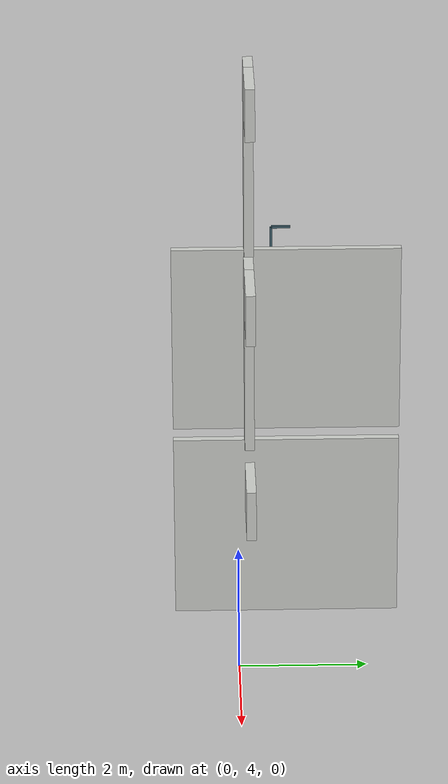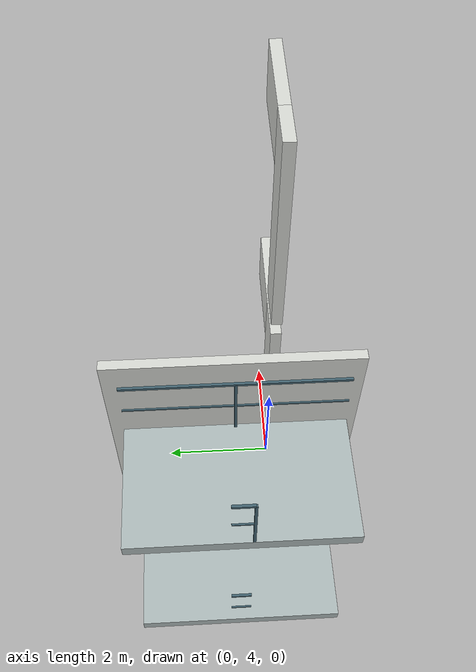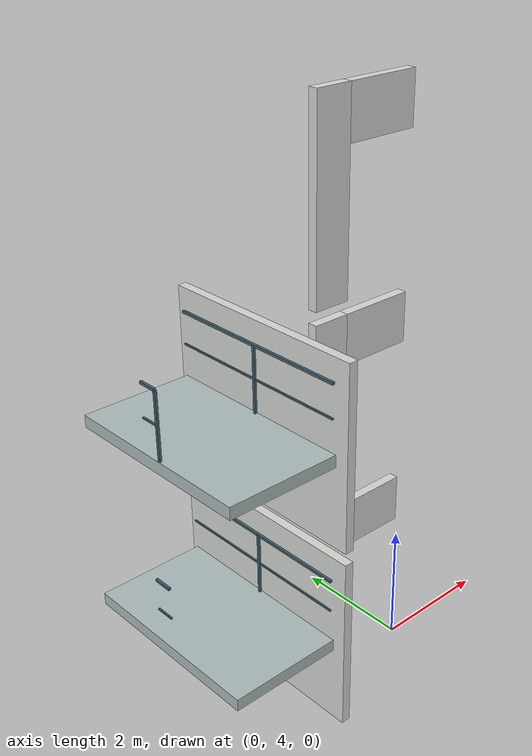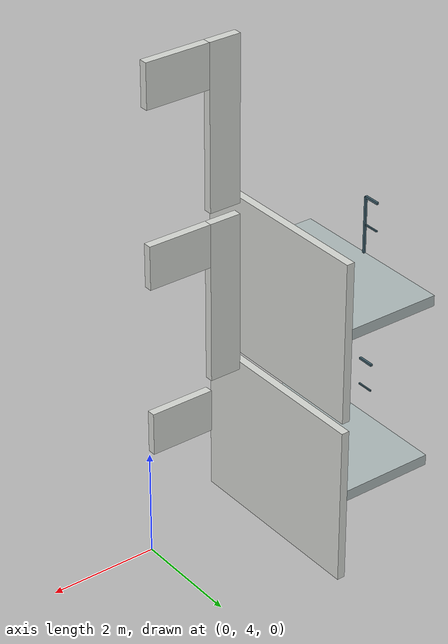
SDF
<sdf version="1.6">
 <world name="three_floor">
  <model name="f1_wall_029">
   <static>true</static>
   <pose>-2.1 4.8 1.5 0 0 0</pose>
   <link name="f1_wall_029_link">
    <collision name="f1_wall_029_collision"><geometry><box><size>0.15 3.6 3</size></box></geometry></collision>
    <visual name="f1_wall_029_visual">
     <geometry><box><size>0.15 3.6 3</size></box></geometry>
     <material><ambient>.84 .85 .83 1</ambient><diffuse>.84 .85 .83 1</diffuse></material>
    </visual>
   </link>
  </model>
  <model name="f1_lintel_lift">
   <static>true</static>
   <pose>-0.5 4.2 2.6 0 0 0</pose>
   <link name="f1_lintel_lift_link">
    <collision name="f1_lintel_lift_collision">
     <geometry><box><size>1.2 0.15 0.8</size></box></geometry>
    </collision>
    <visual name="f1_lintel_lift_visual">
     <geometry><box><size>1.2 0.15 0.8</size></box></geometry>
     <material><ambient>.84 .85 .83 1</ambient><diffuse>.84 .85 .83 1</diffuse></material>
    </visual>
   </link>
  </model>
  <model name="f2_wall_029">
   <static>true</static>
   <pose>-2.1 4.8 4.7 0 0 0</pose>
   <link name="f2_wall_029_link">
    <collision name="f2_wall_029_collision"><geometry><box><size>0.15 3.6 3</size></box></geometry></collision>
    <visual name="f2_wall_029_visual">
     <geometry><box><size>0.15 3.6 3</size></box></geometry>
     <material><ambient>.84 .85 .83 1</ambient><diffuse>.84 .85 .83 1</diffuse></material>
    </visual>
   </link>
  </model>
  <model name="f2_wall_036">
   <static>true</static>
   <pose>-1.4 4.2 4.7 0 0 0</pose>
   <link name="f2_wall_036_link">
    <collision name="f2_wall_036_collision"><geometry><box><size>0.6 0.15 3</size></box></geometry></collision>
    <visual name="f2_wall_036_visual">
     <geometry><box><size>0.6 0.15 3</size></box></geometry>
     <material><ambient>.84 .85 .83 1</ambient><diffuse>.84 .85 .83 1</diffuse></material>
    </visual>
   </link>
  </model>
  <model name="f2_lintel_lift">
   <static>true</static>
   <pose>-0.5 4.2 5.8 0 0 0</pose>
   <link name="f2_lintel_lift_link">
    <collision name="f2_lintel_lift_collision">
     <geometry><box><size>1.2 0.15 0.8</size></box></geometry>
    </collision>
    <visual name="f2_lintel_lift_visual">
     <geometry><box><size>1.2 0.15 0.8</size></box></geometry>
     <material><ambient>.84 .85 .83 1</ambient><diffuse>.84 .85 .83 1</diffuse></material>
    </visual>
   </link>
  </model>
  <model name="f3_wall_036">
   <static>true</static>
   <pose>-1.4 4.2 7.9 0 0 0</pose>
   <link name="f3_wall_036_link">
    <collision name="f3_wall_036_collision"><geometry><box><size>0.6 0.15 3</size></box></geometry></collision>
    <visual name="f3_wall_036_visual">
     <geometry><box><size>0.6 0.15 3</size></box></geometry>
     <material><ambient>.84 .85 .83 1</ambient><diffuse>.84 .85 .83 1</diffuse></material>
    </visual>
   </link>
  </model>
  <model name="f3_lintel_lift">
   <static>true</static>
   <pose>-0.5 4.2 9 0 0 0</pose>
   <link name="f3_lintel_lift_link">
    <collision name="f3_lintel_lift_collision">
     <geometry><box><size>1.2 0.15 0.8</size></box></geometry>
    </collision>
    <visual name="f3_lintel_lift_visual">
     <geometry><box><size>1.2 0.15 0.8</size></box></geometry>
     <material><ambient>.84 .85 .83 1</ambient><diffuse>.84 .85 .83 1</diffuse></material>
    </visual>
   </link>
  </model>
  <model name="f1_stair_mid_landing">
   <static>true</static>
   <pose>-3.175 4.775 1.5 0 0 0</pose>
   <link name="f1_stair_mid_landing_link">
    <collision name="f1_stair_mid_landing_collision">
     <geometry><box><size>1.85 3.25 0.2</size></box></geometry>
     <surface><friction><ode><mu>1.0</mu><mu2>1.0</mu2></ode></friction></surface>
    </collision>
    <visual name="f1_stair_mid_landing_visual">
     <geometry><box><size>1.85 3.25 0.2</size></box></geometry>
     <material>
      <ambient>0.68 0.73 0.73 1</ambient>
      <diffuse>0.68 0.73 0.73 1</diffuse>
      <specular>0.04 0.04 0.04 1</specular>
     </material>
    </visual>
   </link>
  </model>
  <model name="f1_stair_mid_east_guard_top">
   <static>true</static>
   <pose>-2.28 4.775 2.68 0 0 1.570796327</pose>
   <link name="f1_stair_mid_east_guard_top_link">
    <collision name="f1_stair_mid_east_guard_top_collision">
     <geometry><box><size>3.19 0.04 0.04</size></box></geometry>
    </collision>
    <visual name="f1_stair_mid_east_guard_top_visual">
     <geometry><box><size>3.19 0.04 0.04</size></box></geometry>
     <material>
      <ambient>0.26 0.39 0.44 1</ambient>
      <diffuse>0.26 0.39 0.44 1</diffuse>
      <specular>0.04 0.04 0.04 1</specular>
     </material>
    </visual>
   </link>
  </model>
  <model name="f1_stair_mid_east_guard_mid">
   <static>true</static>
   <pose>-2.28 4.775 2.15 0 0 1.570796327</pose>
   <link name="f1_stair_mid_east_guard_mid_link">
    <collision name="f1_stair_mid_east_guard_mid_collision">
     <geometry><box><size>3.19 0.025 0.025</size></box></geometry>
    </collision>
    <visual name="f1_stair_mid_east_guard_mid_visual">
     <geometry><box><size>3.19 0.025 0.025</size></box></geometry>
     <material>
      <ambient>0.26 0.39 0.44 1</ambient>
      <diffuse>0.26 0.39 0.44 1</diffuse>
      <specular>0.04 0.04 0.04 1</specular>
     </material>
    </visual>
   </link>
  </model>
  <model name="f1_stair_mid_east_guard_post_02">
   <static>true</static>
   <pose>-2.28 4.775 2.14 0 0 0</pose>
   <link name="f1_stair_mid_east_guard_post_02_link">
    <collision name="f1_stair_mid_east_guard_post_02_collision">
     <geometry><box><size>0.04 0.04 1.08</size></box></geometry>
    </collision>
    <visual name="f1_stair_mid_east_guard_post_02_visual">
     <geometry><box><size>0.04 0.04 1.08</size></box></geometry>
     <material>
      <ambient>0.26 0.39 0.44 1</ambient>
      <diffuse>0.26 0.39 0.44 1</diffuse>
      <specular>0.04 0.04 0.04 1</specular>
     </material>
    </visual>
   </link>
  </model>
  <model name="f1_stair_mid_west_gap_guard_top">
   <static>true</static>
   <pose>-4.08 4.775 2.68 0 0 1.570796327</pose>
   <link name="f1_stair_mid_west_gap_guard_top_link">
    <collision name="f1_stair_mid_west_gap_guard_top_collision">
     <geometry><box><size>0.31 0.04 0.04</size></box></geometry>
    </collision>
    <visual name="f1_stair_mid_west_gap_guard_top_visual">
     <geometry><box><size>0.31 0.04 0.04</size></box></geometry>
     <material>
      <ambient>0.26 0.39 0.44 1</ambient>
      <diffuse>0.26 0.39 0.44 1</diffuse>
      <specular>0.04 0.04 0.04 1</specular>
     </material>
    </visual>
   </link>
  </model>
  <model name="f1_stair_mid_west_gap_guard_mid">
   <static>true</static>
   <pose>-4.08 4.775 2.15 0 0 1.570796327</pose>
   <link name="f1_stair_mid_west_gap_guard_mid_link">
    <collision name="f1_stair_mid_west_gap_guard_mid_collision">
     <geometry><box><size>0.31 0.025 0.025</size></box></geometry>
    </collision>
    <visual name="f1_stair_mid_west_gap_guard_mid_visual">
     <geometry><box><size>0.31 0.025 0.025</size></box></geometry>
     <material>
      <ambient>0.26 0.39 0.44 1</ambient>
      <diffuse>0.26 0.39 0.44 1</diffuse>
      <specular>0.04 0.04 0.04 1</specular>
     </material>
    </visual>
   </link>
  </model>
  <model name="f2_stair_mid_landing">
   <static>true</static>
   <pose>-3.175 4.775 4.7 0 0 0</pose>
   <link name="f2_stair_mid_landing_link">
    <collision name="f2_stair_mid_landing_collision">
     <geometry><box><size>1.85 3.25 0.2</size></box></geometry>
     <surface><friction><ode><mu>1.0</mu><mu2>1.0</mu2></ode></friction></surface>
    </collision>
    <visual name="f2_stair_mid_landing_visual">
     <geometry><box><size>1.85 3.25 0.2</size></box></geometry>
     <material>
      <ambient>0.68 0.73 0.73 1</ambient>
      <diffuse>0.68 0.73 0.73 1</diffuse>
      <specular>0.04 0.04 0.04 1</specular>
     </material>
    </visual>
   </link>
  </model>
  <model name="f2_stair_mid_east_guard_top">
   <static>true</static>
   <pose>-2.28 4.775 5.88 0 0 1.570796327</pose>
   <link name="f2_stair_mid_east_guard_top_link">
    <collision name="f2_stair_mid_east_guard_top_collision">
     <geometry><box><size>3.19 0.04 0.04</size></box></geometry>
    </collision>
    <visual name="f2_stair_mid_east_guard_top_visual">
     <geometry><box><size>3.19 0.04 0.04</size></box></geometry>
     <material>
      <ambient>0.26 0.39 0.44 1</ambient>
      <diffuse>0.26 0.39 0.44 1</diffuse>
      <specular>0.04 0.04 0.04 1</specular>
     </material>
    </visual>
   </link>
  </model>
  <model name="f2_stair_mid_east_guard_mid">
   <static>true</static>
   <pose>-2.28 4.775 5.35 0 0 1.570796327</pose>
   <link name="f2_stair_mid_east_guard_mid_link">
    <collision name="f2_stair_mid_east_guard_mid_collision">
     <geometry><box><size>3.19 0.025 0.025</size></box></geometry>
    </collision>
    <visual name="f2_stair_mid_east_guard_mid_visual">
     <geometry><box><size>3.19 0.025 0.025</size></box></geometry>
     <material>
      <ambient>0.26 0.39 0.44 1</ambient>
      <diffuse>0.26 0.39 0.44 1</diffuse>
      <specular>0.04 0.04 0.04 1</specular>
     </material>
    </visual>
   </link>
  </model>
  <model name="f2_stair_mid_east_guard_post_02">
   <static>true</static>
   <pose>-2.28 4.775 5.34 0 0 0</pose>
   <link name="f2_stair_mid_east_guard_post_02_link">
    <collision name="f2_stair_mid_east_guard_post_02_collision">
     <geometry><box><size>0.04 0.04 1.08</size></box></geometry>
    </collision>
    <visual name="f2_stair_mid_east_guard_post_02_visual">
     <geometry><box><size>0.04 0.04 1.08</size></box></geometry>
     <material>
      <ambient>0.26 0.39 0.44 1</ambient>
      <diffuse>0.26 0.39 0.44 1</diffuse>
      <specular>0.04 0.04 0.04 1</specular>
     </material>
    </visual>
   </link>
  </model>
  <model name="f2_stair_mid_west_gap_guard_top">
   <static>true</static>
   <pose>-4.08 4.775 5.88 0 0 1.570796327</pose>
   <link name="f2_stair_mid_west_gap_guard_top_link">
    <collision name="f2_stair_mid_west_gap_guard_top_collision">
     <geometry><box><size>0.31 0.04 0.04</size></box></geometry>
    </collision>
    <visual name="f2_stair_mid_west_gap_guard_top_visual">
     <geometry><box><size>0.31 0.04 0.04</size></box></geometry>
     <material>
      <ambient>0.26 0.39 0.44 1</ambient>
      <diffuse>0.26 0.39 0.44 1</diffuse>
      <specular>0.04 0.04 0.04 1</specular>
     </material>
    </visual>
   </link>
  </model>
  <model name="f2_stair_mid_west_gap_guard_mid">
   <static>true</static>
   <pose>-4.08 4.775 5.35 0 0 1.570796327</pose>
   <link name="f2_stair_mid_west_gap_guard_mid_link">
    <collision name="f2_stair_mid_west_gap_guard_mid_collision">
     <geometry><box><size>0.31 0.025 0.025</size></box></geometry>
    </collision>
    <visual name="f2_stair_mid_west_gap_guard_mid_visual">
     <geometry><box><size>0.31 0.025 0.025</size></box></geometry>
     <material>
      <ambient>0.26 0.39 0.44 1</ambient>
      <diffuse>0.26 0.39 0.44 1</diffuse>
      <specular>0.04 0.04 0.04 1</specular>
     </material>
    </visual>
   </link>
  </model>
  <model name="f2_stair_mid_west_gap_guard_post_00">
   <static>true</static>
   <pose>-4.08 4.62 5.34 0 0 0</pose>
   <link name="f2_stair_mid_west_gap_guard_post_00_link">
    <collision name="f2_stair_mid_west_gap_guard_post_00_collision">
     <geometry><box><size>0.04 0.04 1.08</size></box></geometry>
    </collision>
    <visual name="f2_stair_mid_west_gap_guard_post_00_visual">
     <geometry><box><size>0.04 0.04 1.08</size></box></geometry>
     <material>
      <ambient>0.26 0.39 0.44 1</ambient>
      <diffuse>0.26 0.39 0.44 1</diffuse>
      <specular>0.04 0.04 0.04 1</specular>
     </material>
    </visual>
   </link>
  </model>
 </world>
</sdf>
